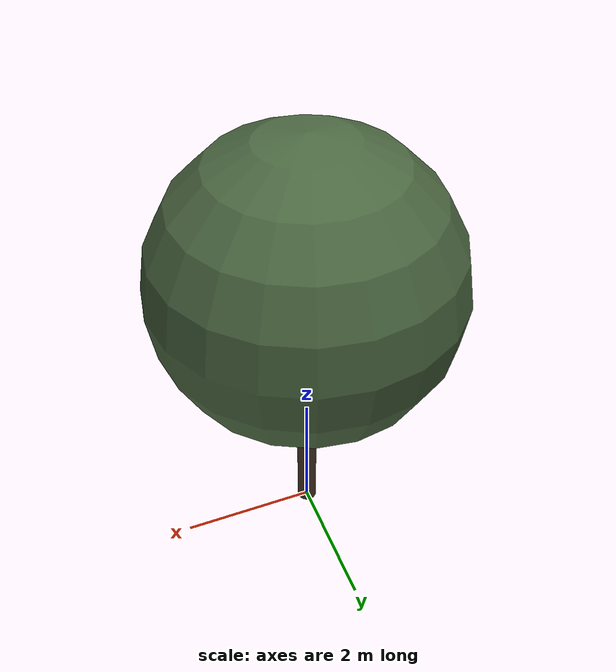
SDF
<?xml version="1.0" ?>
<sdf version="1.10">
  <model name="chene_vert_16">
    <static>true</static>

    <!-- Tronc -->
    <link name="trunk">
      <pose>0 0 1.8623967415268987 0 0 0</pose>
      <visual name="trunk_visual">
        <geometry>
          <cylinder>
            <radius>0.14750596941460903</radius>
            <length>3.7247934830537974</length>
          </cylinder>
        </geometry>
        <material>
          <ambient>0.29 0.22 0.16 1</ambient>
          <diffuse>0.29 0.22 0.16 1</diffuse>
          <specular>0.1 0.1 0.1 1</specular>
        </material>
      </visual>
      <collision name="trunk_collision">
        <geometry>
          <cylinder>
            <radius>0.14750596941460903</radius>
            <length>3.7247934830537974</length>
          </cylinder>
        </geometry>
      </collision>
    </link>

    <!-- Feuillage -->
    <link name="crown">
      <pose>0 0 4.389327903462549 0 0 0</pose>
      <visual name="crown_visual">
        <geometry>
          <sphere>
              <radius>2.2151147346958378</radius>
            </sphere>
        </geometry>
        <material>
          <ambient>0.29 0.40 0.25 1</ambient>
          <diffuse>0.29 0.40 0.25 1</diffuse>
          <specular>0.1 0.1 0.1 1</specular>
        </material>
      </visual>
      <collision name="crown_collision">
        <geometry>
          <sphere>
            <radius>1.7720917877566702</radius>
          </sphere>
        </geometry>
      </collision>
    </link>

    <!-- Joint tronc-feuillage -->
    <joint name="trunk_crown_joint" type="fixed">
      <parent>trunk</parent>
      <child>crown</child>
    </joint>

  </model>
</sdf>
